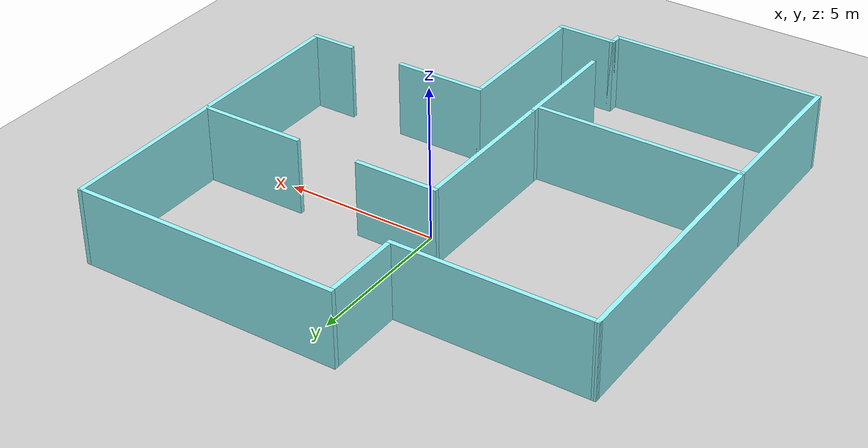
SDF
<sdf version="1.6">
 <world name="default">
  <model name="ground_plane">
   <static>1</static>
   <link name="link">
    <collision name="collision">
     <geometry><plane><normal>0 0 1</normal><size>100 100</size></plane></geometry>
     <surface>
      <contact><collide_bitmask>65535</collide_bitmask></contact>
      <friction><ode><mu>100</mu><mu2>50</mu2></ode></friction>
     </surface>
    </collision>
    <visual name="visual">
     <cast_shadows>0</cast_shadows>
     <geometry><plane><normal>0 0 1</normal><size>100 100</size></plane></geometry>
     <material>
      <script><uri>file://media/materials/scripts/gazebo.material</uri><name>Gazebo/Grey</name></script>
     </material>
    </visual>
   </link>
  </model>
  <model name="firstfloor">
   <pose>-0.121425 -1.62637 0 0 -0 0</pose>
   <link name="Wall_14">
    <collision name="Wall_14_Collision">
     <geometry><box><size>3 0.15 2.5</size></box></geometry>
     <pose>0 0 1.25 0 -0 0</pose>
    </collision>
    <visual name="Wall_14_Visual">
     <pose>0 0 1.25 0 -0 0</pose>
     <geometry><box><size>3 0.15 2.5</size></box></geometry>
     <material>
      <script><uri>file://media/materials/scripts/gazebo.material</uri><name>Gazebo/Grey</name></script>
      <ambient>0.596078 0.968627 0.992157 1</ambient>
     </material>
     <meta><layer>0</layer></meta>
    </visual>
    <pose>2.72262 -2.73897 0 0 -0 0</pose>
   </link>
   <link name="Wall_17">
    <collision name="Wall_17_Collision">
     <geometry><box><size>1.5 0.15 2.5</size></box></geometry>
     <pose>0 0 1.25 0 -0 0</pose>
    </collision>
    <visual name="Wall_17_Visual">
     <pose>0 0 1.25 0 -0 0</pose>
     <geometry><box><size>1.5 0.15 2.5</size></box></geometry>
     <material>
      <script><uri>file://media/materials/scripts/gazebo.material</uri><name>Gazebo/Grey</name></script>
      <ambient>0.596078 0.968627 0.992157 1</ambient>
     </material>
     <meta><layer>0</layer></meta>
    </visual>
    <pose>6.80033 -2.76103 0 0 -0 0</pose>
   </link>
   <link name="Wall_19">
    <collision name="Wall_19_Collision">
     <geometry><box><size>5.5 0.15 2.5</size></box></geometry>
     <pose>0 0 1.25 0 -0 0</pose>
    </collision>
    <visual name="Wall_19_Visual">
     <pose>0 0 1.25 0 -0 0</pose>
     <geometry><box><size>5.5 0.15 2.5</size></box></geometry>
     <material>
      <script><uri>file://media/materials/scripts/gazebo.material</uri><name>Gazebo/Grey</name></script>
      <ambient>0.596078 0.968627 0.992157 1</ambient>
     </material>
     <meta><layer>0</layer></meta>
    </visual>
    <pose>7.47533 -0.086028 0 0 -0 1.5708</pose>
   </link>
   <link name="Wall_20">
    <collision name="Wall_20_Collision">
     <geometry><box><size>3.5 0.15 2.5</size></box></geometry>
     <pose>0 0 1.25 0 -0 0</pose>
    </collision>
    <visual name="Wall_20_Visual">
     <pose>0 0 1.25 0 -0 0</pose>
     <geometry><box><size>3.5 0.15 2.5</size></box></geometry>
     <material>
      <script><uri>file://media/materials/scripts/gazebo.material</uri><name>Gazebo/Grey</name></script>
      <ambient>0.596078 0.968627 0.992157 1</ambient>
     </material>
     <meta><layer>0</layer></meta>
    </visual>
    <pose>5.80033 2.58897 0 0 -0 3.14159</pose>
   </link>
   <link name="Wall_23">
    <collision name="Wall_23_Collision">
     <geometry><box><size>2.75 0.15 2.5</size></box></geometry>
     <pose>0 0 1.25 0 -0 0</pose>
    </collision>
    <visual name="Wall_23_Visual">
     <pose>0 0 1.25 0 -0 0</pose>
     <geometry><box><size>2.75 0.15 2.5</size></box></geometry>
     <material>
      <script><uri>file://media/materials/scripts/gazebo.material</uri><name>Gazebo/Grey</name></script>
      <ambient>0.596078 0.968627 0.992157 1</ambient>
     </material>
     <meta><layer>0</layer></meta>
    </visual>
    <pose>0.6131 2.58957 0 0 -0 3.14159</pose>
   </link>
   <link name="Wall_25">
    <collision name="Wall_25_Collision">
     <geometry><box><size>5.25 0.15 2.5</size></box></geometry>
     <pose>0 0 1.25 0 -0 0</pose>
    </collision>
    <visual name="Wall_25_Visual">
     <pose>0 0 1.25 0 -0 0</pose>
     <geometry><box><size>5.25 0.15 2.5</size></box></geometry>
     <material>
      <script><uri>file://media/materials/scripts/gazebo.material</uri><name>Gazebo/Grey</name></script>
      <ambient>0.596078 0.968627 0.992157 1</ambient>
     </material>
     <meta><layer>0</layer></meta>
    </visual>
    <pose>-0.686899 0.039566 0 0 -0 -1.5708</pose>
   </link>
   <link name="Wall_26">
    <collision name="Wall_26_Collision">
     <geometry><box><size>3.75 0.15 2.5</size></box></geometry>
     <pose>0 0 1.25 0 -0 0</pose>
    </collision>
    <visual name="Wall_26_Visual">
     <pose>0 0 1.25 0 -0 0</pose>
     <geometry><box><size>3.75 0.15 2.5</size></box></geometry>
     <material>
      <script><uri>file://media/materials/scripts/gazebo.material</uri><name>Gazebo/Grey</name></script>
      <ambient>0.596078 0.968627 0.992157 1</ambient>
     </material>
     <meta><layer>0</layer></meta>
    </visual>
    <pose>-0.686899 -4.31043 0 0 -0 -1.5708</pose>
   </link>
   <link name="Wall_28">
    <collision name="Wall_28_Collision">
     <geometry><box><size>5.25 0.15 2.5</size></box></geometry>
     <pose>0 0 1.25 0 -0 0</pose>
    </collision>
    <visual name="Wall_28_Visual">
     <pose>0 0 1.25 0 -0 0</pose>
     <geometry><box><size>5.25 0.15 2.5</size></box></geometry>
     <material>
      <script><uri>file://media/materials/scripts/gazebo.material</uri><name>Gazebo/Grey</name></script>
      <ambient>0.596078 0.968627 0.992157 1</ambient>
     </material>
     <meta><layer>0</layer></meta>
    </visual>
    <pose>-7.40238 -5.38897 0 0 -0 1.5708</pose>
   </link>
   <link name="Wall_3">
    <collision name="Wall_3_Collision">
     <geometry><box><size>7 0.15 2.5</size></box></geometry>
     <pose>0 0 1.25 0 -0 0</pose>
    </collision>
    <visual name="Wall_3_Visual">
     <pose>0 0 1.25 0 -0 0</pose>
     <geometry><box><size>7 0.15 2.5</size></box></geometry>
     <material>
      <script><uri>file://media/materials/scripts/gazebo.material</uri><name>Gazebo/Grey</name></script>
      <ambient>0.596078 0.968627 0.992157 1</ambient>
     </material>
     <meta><layer>0</layer></meta>
    </visual>
    <pose>-3.97738 -7.93897 0 0 -0 0</pose>
   </link>
   <link name="Wall_31">
    <collision name="Wall_31_Collision">
     <geometry><box><size>6.75 0.15 2.5</size></box></geometry>
     <pose>0 0 1.25 0 -0 0</pose>
    </collision>
    <visual name="Wall_31_Visual">
     <pose>0 0 1.25 0 -0 0</pose>
     <geometry><box><size>6.75 0.15 2.5</size></box></geometry>
     <material>
      <script><uri>file://media/materials/scripts/gazebo.material</uri><name>Gazebo/Grey</name></script>
      <ambient>0.596078 0.968627 0.992157 1</ambient>
     </material>
     <meta><layer>0</layer></meta>
    </visual>
    <pose>-4.10238 -2.83897 0 0 -0 0</pose>
   </link>
   <link name="Wall_33">
    <collision name="Wall_33_Collision">
     <geometry><box><size>5.5 0.15 2.5</size></box></geometry>
     <pose>0 0 1.25 0 -0 0</pose>
    </collision>
    <visual name="Wall_33_Visual">
     <pose>0 0 1.25 0 -0 0</pose>
     <geometry><box><size>5.5 0.15 2.5</size></box></geometry>
     <material>
      <script><uri>file://media/materials/scripts/gazebo.material</uri><name>Gazebo/Grey</name></script>
      <ambient>0.596078 0.968627 0.992157 1</ambient>
     </material>
     <meta><layer>0</layer></meta>
    </visual>
    <pose>7.47533 5.26397 0 0 -0 1.5708</pose>
   </link>
   <link name="Wall_34">
    <collision name="Wall_34_Collision">
     <geometry><box><size>8.75 0.15 2.5</size></box></geometry>
     <pose>0 0 1.25 0 -0 0</pose>
    </collision>
    <visual name="Wall_34_Visual">
     <pose>0 0 1.25 0 -0 0</pose>
     <geometry><box><size>8.75 0.15 2.5</size></box></geometry>
     <material>
      <script><uri>file://media/materials/scripts/gazebo.material</uri><name>Gazebo/Grey</name></script>
      <ambient>0.596078 0.968627 0.992157 1</ambient>
     </material>
     <meta><layer>0</layer></meta>
    </visual>
    <pose>3.17533 7.93897 0 0 -0 3.14159</pose>
   </link>
   <link name="Wall_35">
    <collision name="Wall_35_Collision">
     <geometry><box><size>2.75 0.15 2.5</size></box></geometry>
     <pose>0 0 1.25 0 -0 0</pose>
    </collision>
    <visual name="Wall_35_Visual">
     <pose>0 0 1.25 0 -0 0</pose>
     <geometry><box><size>2.75 0.15 2.5</size></box></geometry>
     <material>
      <script><uri>file://media/materials/scripts/gazebo.material</uri><name>Gazebo/Grey</name></script>
      <ambient>0.596078 0.968627 0.992157 1</ambient>
     </material>
     <meta><layer>0</layer></meta>
    </visual>
    <pose>-1.12467 6.63897 0 0 -0 -1.5708</pose>
   </link>
   <link name="Wall_36">
    <collision name="Wall_36_Collision">
     <geometry><box><size>6.5 0.15 2.5</size></box></geometry>
     <pose>0 0 1.25 0 -0 0</pose>
    </collision>
    <visual name="Wall_36_Visual">
     <pose>0 0 1.25 0 -0 0</pose>
     <geometry><box><size>6.5 0.15 2.5</size></box></geometry>
     <material>
      <script><uri>file://media/materials/scripts/gazebo.material</uri><name>Gazebo/Grey</name></script>
      <ambient>0.596078 0.968627 0.992157 1</ambient>
     </material>
     <meta><layer>0</layer></meta>
    </visual>
    <pose>-4.29967 5.33897 0 0 -0 3.14159</pose>
   </link>
   <link name="Wall_37">
    <collision name="Wall_37_Collision">
     <geometry><box><size>8.32826 0.15 2.5</size></box></geometry>
     <pose>0 0 1.25 0 -0 0</pose>
    </collision>
    <visual name="Wall_37_Visual">
     <pose>0 0 1.25 0 -0 0</pose>
     <geometry><box><size>8.32826 0.15 2.5</size></box></geometry>
     <material>
      <script><uri>file://media/materials/scripts/gazebo.material</uri><name>Gazebo/Grey</name></script>
      <ambient>0.596078 0.968627 0.992157 1</ambient>
     </material>
     <meta><layer>0</layer></meta>
    </visual>
    <pose>-7.43852 1.25 0 0 -0 -1.56196</pose>
   </link>
   <link name="Wall_4">
    <collision name="Wall_4_Collision">
     <geometry><box><size>0.5 0.15 2.5</size></box></geometry>
     <pose>0 0 1.25 0 -0 0</pose>
    </collision>
    <visual name="Wall_4_Visual">
     <pose>0 0 1.25 0 -0 0</pose>
     <geometry><box><size>0.5 0.15 2.5</size></box></geometry>
     <material>
      <script><uri>file://media/materials/scripts/gazebo.material</uri><name>Gazebo/Grey</name></script>
      <ambient>0.596078 0.968627 0.992157 1</ambient>
     </material>
     <meta><layer>0</layer></meta>
    </visual>
    <pose>-0.552376 -7.76397 0 0 -0 1.5708</pose>
   </link>
   <link name="Wall_5">
    <collision name="Wall_5_Collision">
     <geometry><box><size>2 0.15 2.5</size></box></geometry>
     <pose>0 0 1.25 0 -0 0</pose>
    </collision>
    <visual name="Wall_5_Visual">
     <pose>0 0 1.25 0 -0 0</pose>
     <geometry><box><size>2 0.15 2.5</size></box></geometry>
     <material>
      <script><uri>file://media/materials/scripts/gazebo.material</uri><name>Gazebo/Grey</name></script>
      <ambient>0.596078 0.968627 0.992157 1</ambient>
     </material>
     <meta><layer>0</layer></meta>
    </visual>
    <pose>0.372624 -7.58897 0 0 -0 0</pose>
   </link>
   <link name="Wall_6">
    <collision name="Wall_6_Collision">
     <geometry><box><size>5 0.15 2.5</size></box></geometry>
     <pose>0 0 1.25 0 -0 0</pose>
    </collision>
    <visual name="Wall_6_Visual">
     <pose>0 0 1.25 0 -0 0</pose>
     <geometry><box><size>5 0.15 2.5</size></box></geometry>
     <material>
      <script><uri>file://media/materials/scripts/gazebo.material</uri><name>Gazebo/Grey</name></script>
      <ambient>0.596078 0.968627 0.992157 1</ambient>
     </material>
     <meta><layer>0</layer></meta>
    </visual>
    <pose>1.29762 -5.16397 0 0 -0 1.5708</pose>
   </link>
   <static>1</static>
  </model>
  <model name="frobot">
   <link name="link_0">
    <inertial>
     <mass>1</mass>
     <inertia>
      <ixx>0.166667</ixx>
      <ixy>0</ixy>
      <ixz>0</ixz>
      <iyy>0.166667</iyy>
      <iyz>0</iyz>
      <izz>0.166667</izz>
     </inertia>
    </inertial>
    <pose>0.005 0.027468 0.075 0 -0 0</pose>
    <visual name="visual">
     <geometry><box><size>0.5 0.5 0.2</size></box></geometry>
     <material>
      <lighting>1</lighting>
      <script><uri>file://media/materials/scripts/gazebo.material</uri><name>Gazebo/Grey</name></script>
      <shader type="vertex"><normal_map>__default__</normal_map></shader>
      <ambient>0.3 0.3 0.3 1</ambient>
      <diffuse>0.7 0.7 0.7 1</diffuse>
      <specular>0.01 0.01 0.01 1</specular>
      <emissive>0 0 0 1</emissive>
     </material>
    </visual>
    <collision name="collision">
     <geometry><box><size>0.5 0.5 0.2</size></box></geometry>
     <surface>
      <friction>
       <ode><mu>1</mu><mu2>1</mu2><fdir1>0 0 0</fdir1><slip1>0</slip1><slip2>0</slip2></ode>
       <torsional>
        <coefficient>1</coefficient>
        <patch_radius>0</patch_radius>
        <surface_radius>0</surface_radius>
        <use_patch_radius>1</use_patch_radius>
        <ode><slip>0</slip></ode>
       </torsional>
      </friction>
      <bounce><restitution_coefficient>0</restitution_coefficient><threshold>1e+06</threshold></bounce>
      <contact>
       <collide_without_contact>0</collide_without_contact>
       <collide_without_contact_bitmask>1</collide_without_contact_bitmask>
       <collide_bitmask>1</collide_bitmask>
       <ode>
        <soft_cfm>0</soft_cfm>
        <soft_erp>0.2</soft_erp>
        <kp>1e+13</kp>
        <kd>1</kd>
        <max_vel>0.01</max_vel>
        <min_depth>0</min_depth>
       </ode>
       <bullet>
        <split_impulse>1</split_impulse>
        <split_impulse_penetration_threshold>-0.01</split_impulse_penetration_threshold>
        <soft_cfm>0</soft_cfm>
        <soft_erp>0.2</soft_erp>
        <kp>1e+13</kp>
        <kd>1</kd>
       </bullet>
      </contact>
     </surface>
    </collision>
   </link>
   <link name="link_1">
    <inertial>
     <mass>1</mass>
     <inertia><ixx>0.145833</ixx><ixy>0</ixy><ixz>0</ixz><iyy>0.145833</iyy><iyz>0</iyz><izz>0.125</izz></inertia>
    </inertial>
    <pose>0.28002 -0.082533 -0.025 4e-06 1.5707 4e-06</pose>
    <visual name="visual">
     <geometry><cylinder><radius>0.1</radius><length>0.05</length></cylinder></geometry>
     <material>
      <lighting>1</lighting>
      <script><uri>file://media/materials/scripts/gazebo.material</uri><name>Gazebo/Grey</name></script>
      <shader type="vertex"><normal_map>__default__</normal_map></shader>
      <ambient>0.3 0.3 0.3 1</ambient>
      <diffuse>0.7 0.7 0.7 1</diffuse>
      <specular>0.01 0.01 0.01 1</specular>
      <emissive>0 0 0 1</emissive>
     </material>
    </visual>
    <collision name="collision">
     <geometry><cylinder><radius>0.1</radius><length>0.05</length></cylinder></geometry>
     <surface>
      <friction>
       <ode><mu>1</mu><mu2>1</mu2><fdir1>0 0 0</fdir1><slip1>0</slip1><slip2>0</slip2></ode>
       <torsional>
        <coefficient>1</coefficient>
        <patch_radius>0</patch_radius>
        <surface_radius>0</surface_radius>
        <use_patch_radius>1</use_patch_radius>
        <ode><slip>0</slip></ode>
       </torsional>
      </friction>
      <bounce><restitution_coefficient>0</restitution_coefficient><threshold>1e+06</threshold></bounce>
      <contact>
       <collide_without_contact>0</collide_without_contact>
       <collide_without_contact_bitmask>1</collide_without_contact_bitmask>
       <collide_bitmask>1</collide_bitmask>
       <ode>
        <soft_cfm>0</soft_cfm>
        <soft_erp>0.2</soft_erp>
        <kp>1e+13</kp>
        <kd>1</kd>
        <max_vel>0.01</max_vel>
        <min_depth>0</min_depth>
       </ode>
       <bullet>
        <split_impulse>1</split_impulse>
        <split_impulse_penetration_threshold>-0.01</split_impulse_penetration_threshold>
        <soft_cfm>0</soft_cfm>
        <soft_erp>0.2</soft_erp>
        <kp>1e+13</kp>
        <kd>1</kd>
       </bullet>
      </contact>
     </surface>
    </collision>
   </link>
   <link name="link_1_clone">
    <inertial>
     <mass>1</mass>
     <inertia><ixx>0.145833</ixx><ixy>0</ixy><ixz>0</ixz><iyy>0.145833</iyy><iyz>0</iyz><izz>0.125</izz></inertia>
    </inertial>
    <pose>-0.27002 -0.082533 -0.025 4e-06 1.5707 4e-06</pose>
    <visual name="visual">
     <geometry><cylinder><radius>0.1</radius><length>0.05</length></cylinder></geometry>
     <material>
      <lighting>1</lighting>
      <script><uri>file://media/materials/scripts/gazebo.material</uri><name>Gazebo/Grey</name></script>
      <shader type="vertex"><normal_map>__default__</normal_map></shader>
      <ambient>0.3 0.3 0.3 1</ambient>
      <diffuse>0.7 0.7 0.7 1</diffuse>
      <specular>0.01 0.01 0.01 1</specular>
      <emissive>0 0 0 1</emissive>
     </material>
    </visual>
    <collision name="collision">
     <geometry><cylinder><radius>0.1</radius><length>0.05</length></cylinder></geometry>
     <surface>
      <friction>
       <ode><mu>1</mu><mu2>1</mu2><fdir1>0 0 0</fdir1><slip1>0</slip1><slip2>0</slip2></ode>
       <torsional>
        <coefficient>1</coefficient>
        <patch_radius>0</patch_radius>
        <surface_radius>0</surface_radius>
        <use_patch_radius>1</use_patch_radius>
        <ode><slip>0</slip></ode>
       </torsional>
      </friction>
      <bounce><restitution_coefficient>0</restitution_coefficient><threshold>1e+06</threshold></bounce>
      <contact>
       <collide_without_contact>0</collide_without_contact>
       <collide_without_contact_bitmask>1</collide_without_contact_bitmask>
       <collide_bitmask>1</collide_bitmask>
       <ode>
        <soft_cfm>0</soft_cfm>
        <soft_erp>0.2</soft_erp>
        <kp>1e+13</kp>
        <kd>1</kd>
        <max_vel>0.01</max_vel>
        <min_depth>0</min_depth>
       </ode>
       <bullet>
        <split_impulse>1</split_impulse>
        <split_impulse_penetration_threshold>-0.01</split_impulse_penetration_threshold>
        <soft_cfm>0</soft_cfm>
        <soft_erp>0.2</soft_erp>
        <kp>1e+13</kp>
        <kd>1</kd>
       </bullet>
      </contact>
     </surface>
    </collision>
   </link>
   <link name="link_2">
    <inertial>
     <mass>1</mass>
     <inertia><ixx>0.1</ixx><ixy>0</ixy><ixz>0</ixz><iyy>0.1</iyy><iyz>0</iyz><izz>0.1</izz></inertia>
    </inertial>
    <pose>-0.015 0.137597 -0.025 0 -0 0</pose>
    <visual name="visual">
     <geometry><sphere><radius>0.1</radius></sphere></geometry>
     <material>
      <lighting>1</lighting>
      <script><uri>file://media/materials/scripts/gazebo.material</uri><name>Gazebo/Grey</name></script>
      <shader type="vertex"><normal_map>__default__</normal_map></shader>
      <ambient>0.3 0.3 0.3 1</ambient>
      <diffuse>0.7 0.7 0.7 1</diffuse>
      <specular>0.01 0.01 0.01 1</specular>
      <emissive>0 0 0 1</emissive>
     </material>
    </visual>
    <collision name="collision">
     <geometry><sphere><radius>0.1</radius></sphere></geometry>
     <surface>
      <friction>
       <ode><mu>1</mu><mu2>1</mu2><fdir1>0 0 0</fdir1><slip1>0</slip1><slip2>0</slip2></ode>
       <torsional>
        <coefficient>1</coefficient>
        <patch_radius>0</patch_radius>
        <surface_radius>0</surface_radius>
        <use_patch_radius>1</use_patch_radius>
        <ode><slip>0</slip></ode>
       </torsional>
      </friction>
      <bounce><restitution_coefficient>0</restitution_coefficient><threshold>1e+06</threshold></bounce>
      <contact>
       <collide_without_contact>0</collide_without_contact>
       <collide_without_contact_bitmask>1</collide_without_contact_bitmask>
       <collide_bitmask>1</collide_bitmask>
       <ode>
        <soft_cfm>0</soft_cfm>
        <soft_erp>0.2</soft_erp>
        <kp>1e+13</kp>
        <kd>1</kd>
        <max_vel>0.01</max_vel>
        <min_depth>0</min_depth>
       </ode>
       <bullet>
        <split_impulse>1</split_impulse>
        <split_impulse_penetration_threshold>-0.01</split_impulse_penetration_threshold>
        <soft_cfm>0</soft_cfm>
        <soft_erp>0.2</soft_erp>
        <kp>1e+13</kp>
        <kd>1</kd>
       </bullet>
      </contact>
     </surface>
    </collision>
   </link>
   <joint name="link_0_JOINT_0" type="revolute">
    <parent>link_0</parent>
    <child>link_1</child>
    <axis>
     <xyz>0 0 1</xyz>
     <use_parent_model_frame>0</use_parent_model_frame>
     <limit>
      <lower>-1.79769e+308</lower>
      <upper>1.79769e+308</upper>
      <effort>-1</effort>
      <velocity>-1</velocity>
     </limit>
     <dynamics>
      <spring_reference>0</spring_reference>
      <spring_stiffness>0</spring_stiffness>
      <damping>0</damping>
      <friction>0</friction>
     </dynamics>
    </axis>
    <physics>
     <ode><limit><cfm>0</cfm><erp>0.2</erp></limit><suspension><cfm>0</cfm><erp>0.2</erp></suspension></ode>
    </physics>
   </joint>
   <joint name="link_0_JOINT_1" type="revolute">
    <parent>link_0</parent>
    <child>link_1_clone</child>
    <axis>
     <xyz>0 0 1</xyz>
     <use_parent_model_frame>0</use_parent_model_frame>
     <limit>
      <lower>-1.79769e+308</lower>
      <upper>1.79769e+308</upper>
      <effort>-1</effort>
      <velocity>-1</velocity>
     </limit>
     <dynamics>
      <spring_reference>0</spring_reference>
      <spring_stiffness>0</spring_stiffness>
      <damping>0</damping>
      <friction>0</friction>
     </dynamics>
    </axis>
    <physics>
     <ode><limit><cfm>0</cfm><erp>0.2</erp></limit><suspension><cfm>0</cfm><erp>0.2</erp></suspension></ode>
    </physics>
   </joint>
   <joint name="link_0_JOINT_2" type="ball">
    <parent>link_0</parent>
    <child>link_2</child>
    <physics>
     <ode><limit><cfm>0</cfm><erp>0.2</erp></limit><suspension><cfm>0</cfm><erp>0.2</erp></suspension></ode>
    </physics>
   </joint>
   <static>0</static>
   <pose>5.28631 -7.32804 0.125 -1.5e-05 5e-06 0.035446</pose>
  </model>
 </world>
</sdf>
